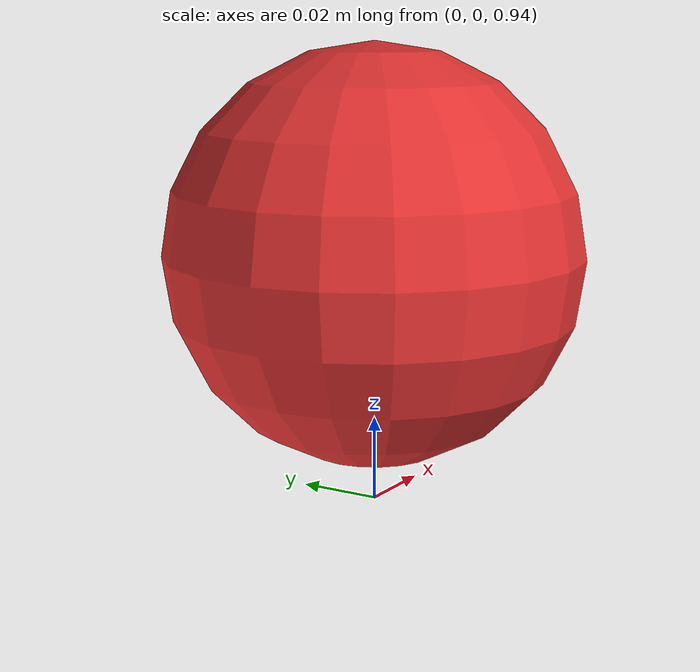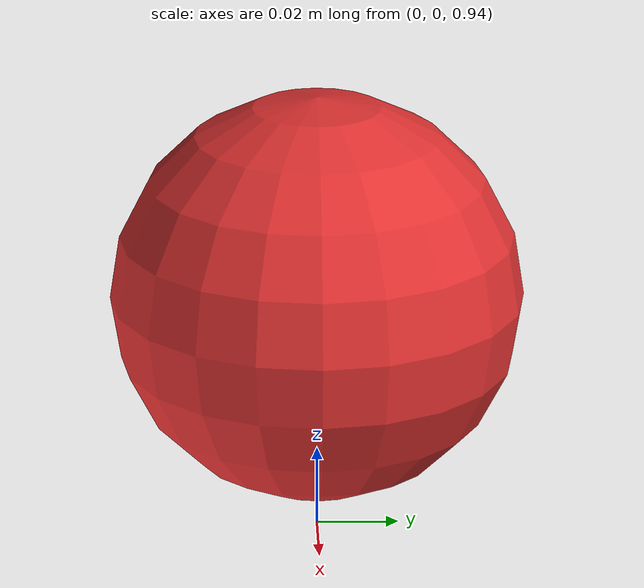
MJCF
<mujoco model="unit_sandbox_base">

  <!-- 1. 컴파일러 설정: 각도 라디안 표준, AABB 바운딩 박스 자동 피팅 -->
  <compiler angle="radian" coordinate="local" autolimits="true" />

  <option timestep="0.001" gravity="0 0 -9.81" integrator="implicitfast" cone="elliptic">
    <flag contact="enable" />
  </option>

  <!-- 3. 시각화 및 오프스크린 기본 해상도 (D435i 센서 표준: 640x480) -->
  <visual>
    <global offwidth="640" offheight="480" azimuth="120" elevation="-20" />
    <quality shadowsize="2048" offsamples="4" />
    <map force="0.1" zfar="30" />
  </visual>

  <!-- 4. 공통 텍스처 및 재질 (바닥 체커보드 그리드) -->
  <asset>
    <!-- 하늘 배경 (Skybox) -->
    <texture type="skybox" builtin="gradient" rgb1="0.3 0.5 0.7" rgb2="0 0 0" width="512" height="512" />

    <!-- 바닥 체크 패턴 (1m x 1m 격자 눈금선: 이동 거리 시각적 식별용) -->
    <texture name="texplane" type="2d" builtin="checker" rgb1="0.2 0.25 0.3" rgb2="0.3 0.35 0.4"
             width="512" height="512" mark="cross" markrgb="0.8 0.8 0.8" />
    <material name="matplane" texture="texplane" texrepeat="5 5" texuniform="true" reflectance="0.1" />

    <!-- 물리 검증용 테스트 물체 재질 -->
    <material name="test_red" rgba="0.9 0.2 0.2 1.0" specular="0.5" shininess="0.5" />
  </asset>

  <!-- 5. 기본 클래스 정의 (Visual vs Collision 분리 규격) -->
  <default>
    <!-- 시각 전용 (충돌 없음, 카메라/뷰어 전용) -->
    <default class="visual">
      <geom contype="0" conaffinity="0" group="2" />
    </default>
    <!-- 충돌 전용 (물리 법칙 적용, 그룹 3) -->
    <default class="collision">
      <geom contype="1" conaffinity="1" group="3" friction="1.0 0.005 0.0001" />
    </default>
  </default>

  <!-- 6. 월드 바디: 기준 바닥, 광원, 관찰 카메라, 물리 테스트 구체 -->
  <worldbody>
    <!-- 주 광원 (그림자 포함 상단 조명) -->
    <light directional="true" pos="0 0 4" dir="0 0 -1" diffuse="0.8 0.8 0.8" specular="0.2 0.2 0.2" castshadow="true" />
    <!-- 보조 광원 (입체감 보조) -->
    <light directional="false" pos="3 -3 3" dir="-1 1 -1" diffuse="0.4 0.4 0.4" specular="0.1 0.1 0.1" />

    <!-- 기준 바닥 평면 (무한 평면, 0.1m 두께 가상 바닥) -->
    <geom name="floor" type="plane" size="0 0 0.05" material="matplane"
          contype="1" conaffinity="1" friction="1.0 0.005 0.0001" condim="3" />

    <!-- 공통 관찰 카메라 (전체 샌드박스 조망 뷰) -->
    <camera name="overview_cam" pos="1.8 -2.2 1.6" xyaxes="0.78 0.62 0.0 -0.28 0.35 0.89" fovy="45" />

    <!--
      [물리 검증용 테스트 강체]
      - 높이 z = 1.0m에 정지 상태로 배치된 1kg짜리 빨간 구체
      - 자유낙하 수치 적분(h = 1/2 * g * t^2)이 이론값과 오차 없이 일치하는지 자동 검증하는 용도
    -->
    <body name="test_ball" pos="0 0 1.0">
      <freejoint name="test_ball_joint" />
      <inertial pos="0 0 0" mass="1.0" diaginertia="0.001 0.001 0.001" />
      <geom name="test_ball_geom" type="sphere" size="0.05" material="test_red" class="collision" group="1" />
    </body>
  </worldbody>
</mujoco>
